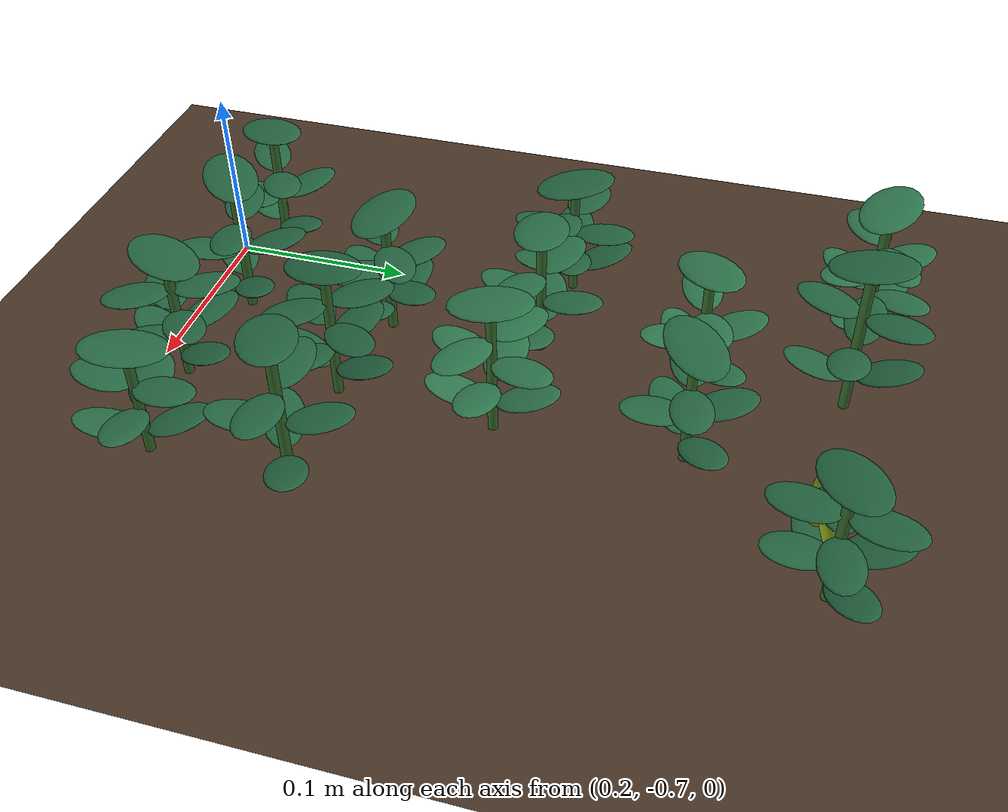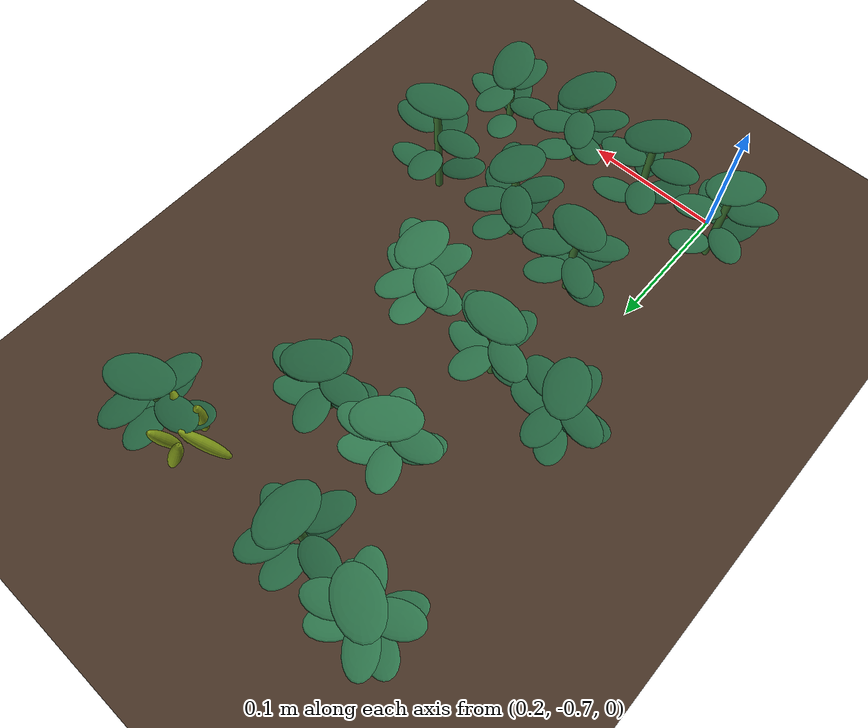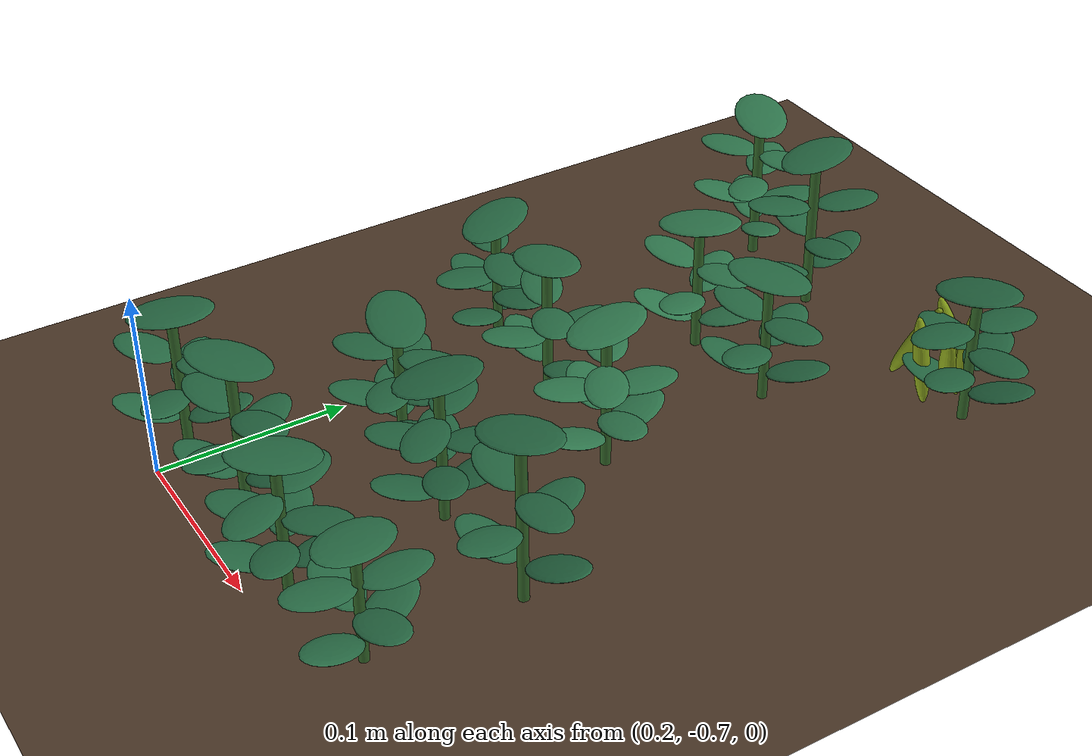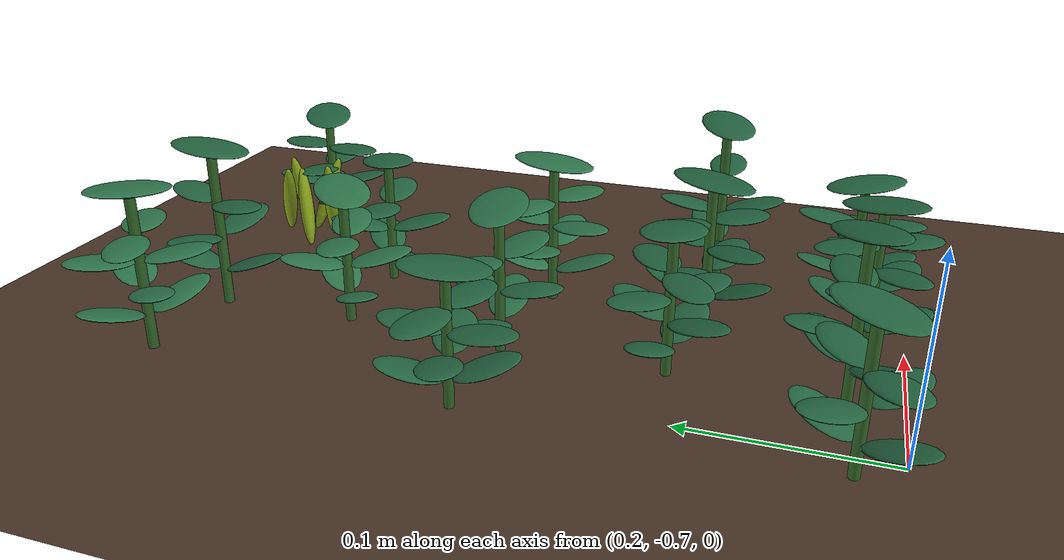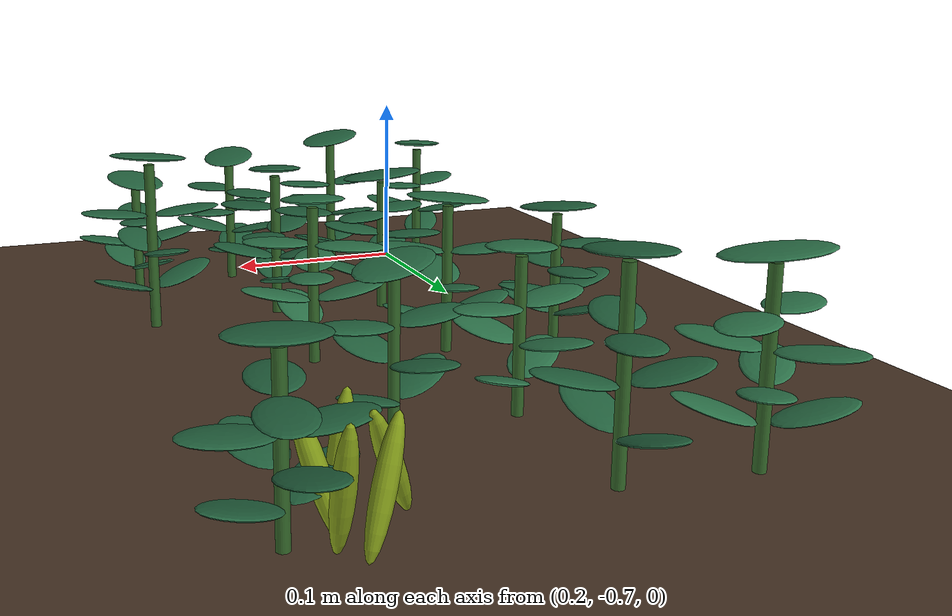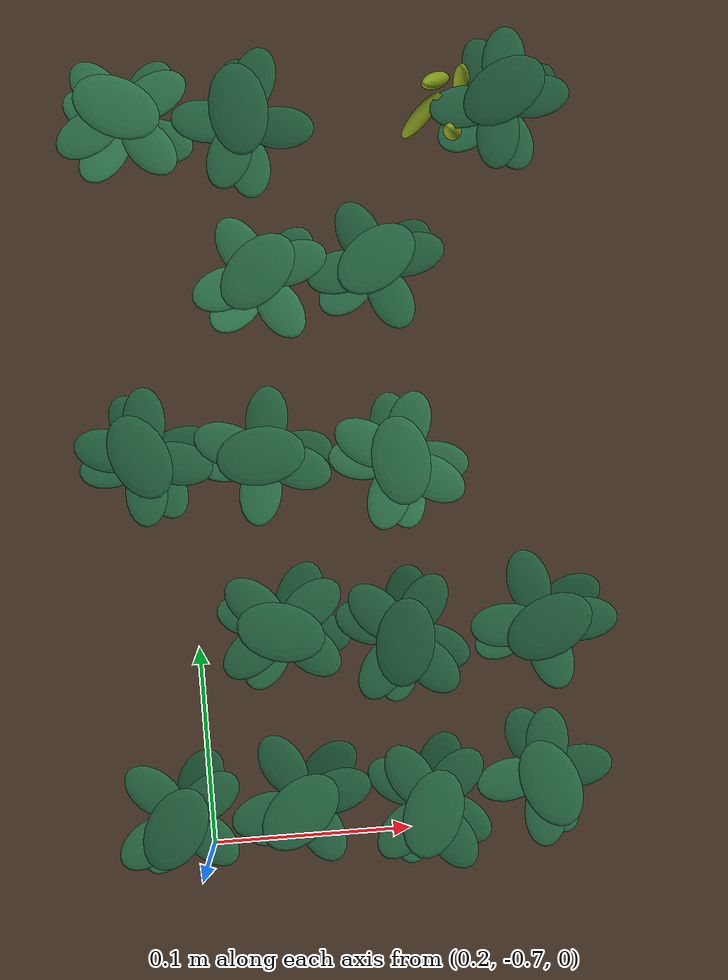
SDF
<sdf version="1.9">
 <world name="jim_field">
  <model name="ground_plane">
   <static>true</static>
   <link name="link">
    <collision name="collision">
     <geometry><plane><normal>0 0 1</normal><size>40 40</size></plane></geometry>
    </collision>
    <visual name="visual">
     <geometry><plane><normal>0 0 1</normal><size>40 40</size></plane></geometry>
     <material>
      <ambient>0.20 0.15 0.11 1</ambient>
      <diffuse>0.30 0.22 0.16 1</diffuse>
      <specular>0.01 0.01 0.01 1</specular>
     </material>
    </visual>
   </link>
  </model>
  <model name="field">
   <static>true</static>
   <pose>0.1837 -0.2516 0 0 0 0</pose>
   <model name="crop_8">
    <static>true</static>
    <pose>0.0037 -0.4267 0 0 0 0</pose>
    <link name="link">
     <visual name="stem">
      <pose>0 0 0.0368 0 0 0</pose>
      <geometry><cylinder><radius>0.0026</radius><length>0.0736</length></cylinder></geometry>
      <material>
       <ambient>0.10 0.22 0.09 1</ambient>
       <diffuse>0.20 0.40 0.16 1</diffuse>
       <specular>0.05 0.06 0.05 1</specular>
      </material>
     </visual>
     <visual name="leaflet_0_0">
      <pose>0.0094 0.0153 0.0221 0 -0.300 1.0215</pose>
      <geometry><ellipsoid><radii>0.0170 0.0105 0.0016</radii></ellipsoid></geometry>
      <material>
       <ambient>0.081 0.218 0.124 1</ambient>
       <diffuse>0.151 0.416 0.265 1</diffuse>
       <specular>0.05 0.06 0.05 1</specular>
      </material>
     </visual>
     <visual name="leaflet_0_1">
      <pose>-0.0094 -0.0153 0.0221 0 -0.300 4.1631</pose>
      <geometry><ellipsoid><radii>0.0170 0.0105 0.0016</radii></ellipsoid></geometry>
      <material>
       <ambient>0.081 0.218 0.124 1</ambient>
       <diffuse>0.151 0.416 0.265 1</diffuse>
       <specular>0.05 0.06 0.05 1</specular>
      </material>
     </visual>
     <visual name="leaflet_1_0">
      <pose>-0.0129 0.0125 0.0373 0 -0.200 2.3715</pose>
      <geometry><ellipsoid><radii>0.0170 0.0105 0.0016</radii></ellipsoid></geometry>
      <material>
       <ambient>0.081 0.218 0.124 1</ambient>
       <diffuse>0.151 0.416 0.265 1</diffuse>
       <specular>0.05 0.06 0.05 1</specular>
      </material>
     </visual>
     <visual name="leaflet_1_1">
      <pose>0.0129 -0.0125 0.0373 0 -0.200 5.5131</pose>
      <geometry><ellipsoid><radii>0.0170 0.0105 0.0016</radii></ellipsoid></geometry>
      <material>
       <ambient>0.081 0.218 0.124 1</ambient>
       <diffuse>0.151 0.416 0.265 1</diffuse>
       <specular>0.05 0.06 0.05 1</specular>
      </material>
     </visual>
     <visual name="leaflet_2_0">
      <pose>-0.0150 -0.0098 0.0525 0 -0.100 3.7215</pose>
      <geometry><ellipsoid><radii>0.0170 0.0105 0.0016</radii></ellipsoid></geometry>
      <material>
       <ambient>0.081 0.218 0.124 1</ambient>
       <diffuse>0.151 0.416 0.265 1</diffuse>
       <specular>0.05 0.06 0.05 1</specular>
      </material>
     </visual>
     <visual name="leaflet_2_1">
      <pose>0.0150 0.0098 0.0525 0 -0.100 6.8631</pose>
      <geometry><ellipsoid><radii>0.0170 0.0105 0.0016</radii></ellipsoid></geometry>
      <material>
       <ambient>0.081 0.218 0.124 1</ambient>
       <diffuse>0.151 0.416 0.265 1</diffuse>
       <specular>0.05 0.06 0.05 1</specular>
      </material>
     </visual>
     <visual name="leaflet_terminal">
      <pose>0 0 0.0776 0 -0.12 1.0215</pose>
      <geometry><ellipsoid><radii>0.0215 0.0140 0.0018</radii></ellipsoid></geometry>
      <material>
       <ambient>0.081 0.218 0.124 1</ambient>
       <diffuse>0.151 0.416 0.265 1</diffuse>
       <specular>0.05 0.06 0.05 1</specular>
      </material>
     </visual>
    </link>
   </model>
   <model name="crop_9">
    <static>true</static>
    <pose>0.0637 -0.4222 0 0 0 0</pose>
    <link name="link">
     <visual name="stem">
      <pose>0 0 0.0403 0 0 0</pose>
      <geometry><cylinder><radius>0.0026</radius><length>0.0805</length></cylinder></geometry>
      <material>
       <ambient>0.10 0.22 0.09 1</ambient>
       <diffuse>0.20 0.40 0.16 1</diffuse>
       <specular>0.05 0.06 0.05 1</specular>
      </material>
     </visual>
     <visual name="leaflet_0_0">
      <pose>-0.0142 -0.0116 0.0242 0 -0.300 3.8253</pose>
      <geometry><ellipsoid><radii>0.0170 0.0105 0.0016</radii></ellipsoid></geometry>
      <material>
       <ambient>0.075 0.209 0.117 1</ambient>
       <diffuse>0.140 0.397 0.252 1</diffuse>
       <specular>0.05 0.06 0.05 1</specular>
      </material>
     </visual>
     <visual name="leaflet_0_1">
      <pose>0.0142 0.0116 0.0242 0 -0.300 6.9669</pose>
      <geometry><ellipsoid><radii>0.0170 0.0105 0.0016</radii></ellipsoid></geometry>
      <material>
       <ambient>0.075 0.209 0.117 1</ambient>
       <diffuse>0.140 0.397 0.252 1</diffuse>
       <specular>0.05 0.06 0.05 1</specular>
      </material>
     </visual>
     <visual name="leaflet_1_0">
      <pose>0.0082 -0.0164 0.0408 0 -0.200 5.1753</pose>
      <geometry><ellipsoid><radii>0.0170 0.0105 0.0016</radii></ellipsoid></geometry>
      <material>
       <ambient>0.075 0.209 0.117 1</ambient>
       <diffuse>0.140 0.397 0.252 1</diffuse>
       <specular>0.05 0.06 0.05 1</specular>
      </material>
     </visual>
     <visual name="leaflet_1_1">
      <pose>-0.0082 0.0164 0.0408 0 -0.200 8.3169</pose>
      <geometry><ellipsoid><radii>0.0170 0.0105 0.0016</radii></ellipsoid></geometry>
      <material>
       <ambient>0.075 0.209 0.117 1</ambient>
       <diffuse>0.140 0.397 0.252 1</diffuse>
       <specular>0.05 0.06 0.05 1</specular>
      </material>
     </visual>
     <visual name="leaflet_2_0">
      <pose>0.0178 0.0044 0.0574 0 -0.100 6.5253</pose>
      <geometry><ellipsoid><radii>0.0170 0.0105 0.0016</radii></ellipsoid></geometry>
      <material>
       <ambient>0.075 0.209 0.117 1</ambient>
       <diffuse>0.140 0.397 0.252 1</diffuse>
       <specular>0.05 0.06 0.05 1</specular>
      </material>
     </visual>
     <visual name="leaflet_2_1">
      <pose>-0.0178 -0.0044 0.0574 0 -0.100 9.6669</pose>
      <geometry><ellipsoid><radii>0.0170 0.0105 0.0016</radii></ellipsoid></geometry>
      <material>
       <ambient>0.075 0.209 0.117 1</ambient>
       <diffuse>0.140 0.397 0.252 1</diffuse>
       <specular>0.05 0.06 0.05 1</specular>
      </material>
     </visual>
     <visual name="leaflet_terminal">
      <pose>0 0 0.0845 0 -0.12 3.8253</pose>
      <geometry><ellipsoid><radii>0.0215 0.0140 0.0018</radii></ellipsoid></geometry>
      <material>
       <ambient>0.075 0.209 0.117 1</ambient>
       <diffuse>0.140 0.397 0.252 1</diffuse>
       <specular>0.05 0.06 0.05 1</specular>
      </material>
     </visual>
    </link>
   </model>
   <model name="crop_10">
    <static>true</static>
    <pose>0.1263 -0.4297 0 0 0 0</pose>
    <link name="link">
     <visual name="stem">
      <pose>0 0 0.0357 0 0 0</pose>
      <geometry><cylinder><radius>0.0026</radius><length>0.0714</length></cylinder></geometry>
      <material>
       <ambient>0.10 0.22 0.09 1</ambient>
       <diffuse>0.20 0.40 0.16 1</diffuse>
       <specular>0.05 0.06 0.05 1</specular>
      </material>
     </visual>
     <visual name="leaflet_0_0">
      <pose>-0.0068 -0.0165 0.0214 0 -0.300 4.3217</pose>
      <geometry><ellipsoid><radii>0.0170 0.0105 0.0016</radii></ellipsoid></geometry>
      <material>
       <ambient>0.077 0.211 0.119 1</ambient>
       <diffuse>0.143 0.402 0.255 1</diffuse>
       <specular>0.05 0.06 0.05 1</specular>
      </material>
     </visual>
     <visual name="leaflet_0_1">
      <pose>0.0068 0.0165 0.0214 0 -0.300 7.4632</pose>
      <geometry><ellipsoid><radii>0.0170 0.0105 0.0016</radii></ellipsoid></geometry>
      <material>
       <ambient>0.077 0.211 0.119 1</ambient>
       <diffuse>0.143 0.402 0.255 1</diffuse>
       <specular>0.05 0.06 0.05 1</specular>
      </material>
     </visual>
     <visual name="leaflet_1_0">
      <pose>0.0146 -0.0102 0.0325 0 -0.200 5.6717</pose>
      <geometry><ellipsoid><radii>0.0170 0.0105 0.0016</radii></ellipsoid></geometry>
      <material>
       <ambient>0.077 0.211 0.119 1</ambient>
       <diffuse>0.143 0.402 0.255 1</diffuse>
       <specular>0.05 0.06 0.05 1</specular>
      </material>
     </visual>
     <visual name="leaflet_1_1">
      <pose>-0.0146 0.0102 0.0325 0 -0.200 8.8132</pose>
      <geometry><ellipsoid><radii>0.0170 0.0105 0.0016</radii></ellipsoid></geometry>
      <material>
       <ambient>0.077 0.211 0.119 1</ambient>
       <diffuse>0.143 0.402 0.255 1</diffuse>
       <specular>0.05 0.06 0.05 1</specular>
      </material>
     </visual>
     <visual name="leaflet_2_0">
      <pose>0.0132 0.0120 0.0435 0 -0.100 7.0217</pose>
      <geometry><ellipsoid><radii>0.0170 0.0105 0.0016</radii></ellipsoid></geometry>
      <material>
       <ambient>0.077 0.211 0.119 1</ambient>
       <diffuse>0.143 0.402 0.255 1</diffuse>
       <specular>0.05 0.06 0.05 1</specular>
      </material>
     </visual>
     <visual name="leaflet_2_1">
      <pose>-0.0132 -0.0120 0.0435 0 -0.100 10.1632</pose>
      <geometry><ellipsoid><radii>0.0170 0.0105 0.0016</radii></ellipsoid></geometry>
      <material>
       <ambient>0.077 0.211 0.119 1</ambient>
       <diffuse>0.143 0.402 0.255 1</diffuse>
       <specular>0.05 0.06 0.05 1</specular>
      </material>
     </visual>
     <visual name="leaflet_3_0">
      <pose>-0.0088 0.0155 0.0546 0 0.000 8.3717</pose>
      <geometry><ellipsoid><radii>0.0170 0.0105 0.0016</radii></ellipsoid></geometry>
      <material>
       <ambient>0.077 0.211 0.119 1</ambient>
       <diffuse>0.143 0.402 0.255 1</diffuse>
       <specular>0.05 0.06 0.05 1</specular>
      </material>
     </visual>
     <visual name="leaflet_3_1">
      <pose>0.0088 -0.0155 0.0546 0 0.000 11.5132</pose>
      <geometry><ellipsoid><radii>0.0170 0.0105 0.0016</radii></ellipsoid></geometry>
      <material>
       <ambient>0.077 0.211 0.119 1</ambient>
       <diffuse>0.143 0.402 0.255 1</diffuse>
       <specular>0.05 0.06 0.05 1</specular>
      </material>
     </visual>
     <visual name="leaflet_terminal">
      <pose>0 0 0.0754 0 -0.12 4.3217</pose>
      <geometry><ellipsoid><radii>0.0215 0.0140 0.0018</radii></ellipsoid></geometry>
      <material>
       <ambient>0.077 0.211 0.119 1</ambient>
       <diffuse>0.143 0.402 0.255 1</diffuse>
       <specular>0.05 0.06 0.05 1</specular>
      </material>
     </visual>
    </link>
   </model>
   <model name="crop_11">
    <static>true</static>
    <pose>0.1842 -0.4212 0 0 0 0</pose>
    <link name="link">
     <visual name="stem">
      <pose>0 0 0.0308 0 0 0</pose>
      <geometry><cylinder><radius>0.0025</radius><length>0.0617</length></cylinder></geometry>
      <material>
       <ambient>0.10 0.22 0.09 1</ambient>
       <diffuse>0.20 0.40 0.16 1</diffuse>
       <specular>0.05 0.06 0.05 1</specular>
      </material>
     </visual>
     <visual name="leaflet_0_0">
      <pose>0.0058 -0.0163 0.0185 0 -0.300 5.0557</pose>
      <geometry><ellipsoid><radii>0.0170 0.0105 0.0016</radii></ellipsoid></geometry>
      <material>
       <ambient>0.082 0.220 0.126 1</ambient>
       <diffuse>0.154 0.420 0.268 1</diffuse>
       <specular>0.05 0.06 0.05 1</specular>
      </material>
     </visual>
     <visual name="leaflet_0_1">
      <pose>-0.0058 0.0163 0.0185 0 -0.300 8.1973</pose>
      <geometry><ellipsoid><radii>0.0170 0.0105 0.0016</radii></ellipsoid></geometry>
      <material>
       <ambient>0.082 0.220 0.126 1</ambient>
       <diffuse>0.154 0.420 0.268 1</diffuse>
       <specular>0.05 0.06 0.05 1</specular>
      </material>
     </visual>
     <visual name="leaflet_1_0">
      <pose>0.0172 0.0021 0.0313 0 -0.200 6.4057</pose>
      <geometry><ellipsoid><radii>0.0170 0.0105 0.0016</radii></ellipsoid></geometry>
      <material>
       <ambient>0.082 0.220 0.126 1</ambient>
       <diffuse>0.154 0.420 0.268 1</diffuse>
       <specular>0.05 0.06 0.05 1</specular>
      </material>
     </visual>
     <visual name="leaflet_1_1">
      <pose>-0.0172 -0.0021 0.0313 0 -0.200 9.5473</pose>
      <geometry><ellipsoid><radii>0.0170 0.0105 0.0016</radii></ellipsoid></geometry>
      <material>
       <ambient>0.082 0.220 0.126 1</ambient>
       <diffuse>0.154 0.420 0.268 1</diffuse>
       <specular>0.05 0.06 0.05 1</specular>
      </material>
     </visual>
     <visual name="leaflet_2_0">
      <pose>0.0017 0.0172 0.0440 0 -0.100 7.7557</pose>
      <geometry><ellipsoid><radii>0.0170 0.0105 0.0016</radii></ellipsoid></geometry>
      <material>
       <ambient>0.082 0.220 0.126 1</ambient>
       <diffuse>0.154 0.420 0.268 1</diffuse>
       <specular>0.05 0.06 0.05 1</specular>
      </material>
     </visual>
     <visual name="leaflet_2_1">
      <pose>-0.0017 -0.0172 0.0440 0 -0.100 10.8973</pose>
      <geometry><ellipsoid><radii>0.0170 0.0105 0.0016</radii></ellipsoid></geometry>
      <material>
       <ambient>0.082 0.220 0.126 1</ambient>
       <diffuse>0.154 0.420 0.268 1</diffuse>
       <specular>0.05 0.06 0.05 1</specular>
      </material>
     </visual>
     <visual name="leaflet_terminal">
      <pose>0 0 0.0657 0 -0.12 5.0557</pose>
      <geometry><ellipsoid><radii>0.0215 0.0140 0.0018</radii></ellipsoid></geometry>
      <material>
       <ambient>0.082 0.220 0.126 1</ambient>
       <diffuse>0.154 0.420 0.268 1</diffuse>
       <specular>0.05 0.06 0.05 1</specular>
      </material>
     </visual>
    </link>
   </model>
   <model name="crop_26">
    <static>true</static>
    <pose>0.0610 -0.3376 0 0 0 0</pose>
    <link name="link">
     <visual name="stem">
      <pose>0 0 0.0356 0 0 0</pose>
      <geometry><cylinder><radius>0.0026</radius><length>0.0712</length></cylinder></geometry>
      <material>
       <ambient>0.10 0.22 0.09 1</ambient>
       <diffuse>0.20 0.40 0.16 1</diffuse>
       <specular>0.05 0.06 0.05 1</specular>
      </material>
     </visual>
     <visual name="leaflet_0_0">
      <pose>-0.0170 0.0054 0.0214 0 -0.300 2.8353</pose>
      <geometry><ellipsoid><radii>0.0170 0.0105 0.0016</radii></ellipsoid></geometry>
      <material>
       <ambient>0.077 0.212 0.120 1</ambient>
       <diffuse>0.145 0.405 0.257 1</diffuse>
       <specular>0.05 0.06 0.05 1</specular>
      </material>
     </visual>
     <visual name="leaflet_0_1">
      <pose>0.0170 -0.0054 0.0214 0 -0.300 5.9769</pose>
      <geometry><ellipsoid><radii>0.0170 0.0105 0.0016</radii></ellipsoid></geometry>
      <material>
       <ambient>0.077 0.212 0.120 1</ambient>
       <diffuse>0.145 0.405 0.257 1</diffuse>
       <specular>0.05 0.06 0.05 1</specular>
      </material>
     </visual>
     <visual name="leaflet_1_0">
      <pose>-0.0090 -0.0154 0.0324 0 -0.200 4.1853</pose>
      <geometry><ellipsoid><radii>0.0170 0.0105 0.0016</radii></ellipsoid></geometry>
      <material>
       <ambient>0.077 0.212 0.120 1</ambient>
       <diffuse>0.145 0.405 0.257 1</diffuse>
       <specular>0.05 0.06 0.05 1</specular>
      </material>
     </visual>
     <visual name="leaflet_1_1">
      <pose>0.0090 0.0154 0.0324 0 -0.200 7.3269</pose>
      <geometry><ellipsoid><radii>0.0170 0.0105 0.0016</radii></ellipsoid></geometry>
      <material>
       <ambient>0.077 0.212 0.120 1</ambient>
       <diffuse>0.145 0.405 0.257 1</diffuse>
       <specular>0.05 0.06 0.05 1</specular>
      </material>
     </visual>
     <visual name="leaflet_2_0">
      <pose>0.0130 -0.0121 0.0434 0 -0.100 5.5353</pose>
      <geometry><ellipsoid><radii>0.0170 0.0105 0.0016</radii></ellipsoid></geometry>
      <material>
       <ambient>0.077 0.212 0.120 1</ambient>
       <diffuse>0.145 0.405 0.257 1</diffuse>
       <specular>0.05 0.06 0.05 1</specular>
      </material>
     </visual>
     <visual name="leaflet_2_1">
      <pose>-0.0130 0.0121 0.0434 0 -0.100 8.6769</pose>
      <geometry><ellipsoid><radii>0.0170 0.0105 0.0016</radii></ellipsoid></geometry>
      <material>
       <ambient>0.077 0.212 0.120 1</ambient>
       <diffuse>0.145 0.405 0.257 1</diffuse>
       <specular>0.05 0.06 0.05 1</specular>
      </material>
     </visual>
     <visual name="leaflet_3_0">
      <pose>0.0147 0.0101 0.0545 0 0.000 6.8853</pose>
      <geometry><ellipsoid><radii>0.0170 0.0105 0.0016</radii></ellipsoid></geometry>
      <material>
       <ambient>0.077 0.212 0.120 1</ambient>
       <diffuse>0.145 0.405 0.257 1</diffuse>
       <specular>0.05 0.06 0.05 1</specular>
      </material>
     </visual>
     <visual name="leaflet_3_1">
      <pose>-0.0147 -0.0101 0.0545 0 0.000 10.0269</pose>
      <geometry><ellipsoid><radii>0.0170 0.0105 0.0016</radii></ellipsoid></geometry>
      <material>
       <ambient>0.077 0.212 0.120 1</ambient>
       <diffuse>0.145 0.405 0.257 1</diffuse>
       <specular>0.05 0.06 0.05 1</specular>
      </material>
     </visual>
     <visual name="leaflet_terminal">
      <pose>0 0 0.0752 0 -0.12 2.8353</pose>
      <geometry><ellipsoid><radii>0.0215 0.0140 0.0018</radii></ellipsoid></geometry>
      <material>
       <ambient>0.077 0.212 0.120 1</ambient>
       <diffuse>0.145 0.405 0.257 1</diffuse>
       <specular>0.05 0.06 0.05 1</specular>
      </material>
     </visual>
    </link>
   </model>
   <model name="crop_27">
    <static>true</static>
    <pose>0.1196 -0.3467 0 0 0 0</pose>
    <link name="link">
     <visual name="stem">
      <pose>0 0 0.0383 0 0 0</pose>
      <geometry><cylinder><radius>0.0026</radius><length>0.0766</length></cylinder></geometry>
      <material>
       <ambient>0.10 0.22 0.09 1</ambient>
       <diffuse>0.20 0.40 0.16 1</diffuse>
       <specular>0.05 0.06 0.05 1</specular>
      </material>
     </visual>
     <visual name="leaflet_0_0">
      <pose>0.0034 0.0178 0.0230 0 -0.300 1.3830</pose>
      <geometry><ellipsoid><radii>0.0170 0.0105 0.0016</radii></ellipsoid></geometry>
      <material>
       <ambient>0.072 0.204 0.113 1</ambient>
       <diffuse>0.134 0.387 0.245 1</diffuse>
       <specular>0.05 0.06 0.05 1</specular>
      </material>
     </visual>
     <visual name="leaflet_0_1">
      <pose>-0.0034 -0.0178 0.0230 0 -0.300 4.5246</pose>
      <geometry><ellipsoid><radii>0.0170 0.0105 0.0016</radii></ellipsoid></geometry>
      <material>
       <ambient>0.072 0.204 0.113 1</ambient>
       <diffuse>0.134 0.387 0.245 1</diffuse>
       <specular>0.05 0.06 0.05 1</specular>
      </material>
     </visual>
     <visual name="leaflet_1_0">
      <pose>-0.0166 0.0072 0.0349 0 -0.200 2.7330</pose>
      <geometry><ellipsoid><radii>0.0170 0.0105 0.0016</radii></ellipsoid></geometry>
      <material>
       <ambient>0.072 0.204 0.113 1</ambient>
       <diffuse>0.134 0.387 0.245 1</diffuse>
       <specular>0.05 0.06 0.05 1</specular>
      </material>
     </visual>
     <visual name="leaflet_1_1">
      <pose>0.0166 -0.0072 0.0349 0 -0.200 5.8746</pose>
      <geometry><ellipsoid><radii>0.0170 0.0105 0.0016</radii></ellipsoid></geometry>
      <material>
       <ambient>0.072 0.204 0.113 1</ambient>
       <diffuse>0.134 0.387 0.245 1</diffuse>
       <specular>0.05 0.06 0.05 1</specular>
      </material>
     </visual>
     <visual name="leaflet_2_0">
      <pose>-0.0106 -0.0146 0.0467 0 -0.100 4.0830</pose>
      <geometry><ellipsoid><radii>0.0170 0.0105 0.0016</radii></ellipsoid></geometry>
      <material>
       <ambient>0.072 0.204 0.113 1</ambient>
       <diffuse>0.134 0.387 0.245 1</diffuse>
       <specular>0.05 0.06 0.05 1</specular>
      </material>
     </visual>
     <visual name="leaflet_2_1">
      <pose>0.0106 0.0146 0.0467 0 -0.100 7.2246</pose>
      <geometry><ellipsoid><radii>0.0170 0.0105 0.0016</radii></ellipsoid></geometry>
      <material>
       <ambient>0.072 0.204 0.113 1</ambient>
       <diffuse>0.134 0.387 0.245 1</diffuse>
       <specular>0.05 0.06 0.05 1</specular>
      </material>
     </visual>
     <visual name="leaflet_3_0">
      <pose>0.0119 -0.0136 0.0586 0 0.000 5.4330</pose>
      <geometry><ellipsoid><radii>0.0170 0.0105 0.0016</radii></ellipsoid></geometry>
      <material>
       <ambient>0.072 0.204 0.113 1</ambient>
       <diffuse>0.134 0.387 0.245 1</diffuse>
       <specular>0.05 0.06 0.05 1</specular>
      </material>
     </visual>
     <visual name="leaflet_3_1">
      <pose>-0.0119 0.0136 0.0586 0 0.000 8.5746</pose>
      <geometry><ellipsoid><radii>0.0170 0.0105 0.0016</radii></ellipsoid></geometry>
      <material>
       <ambient>0.072 0.204 0.113 1</ambient>
       <diffuse>0.134 0.387 0.245 1</diffuse>
       <specular>0.05 0.06 0.05 1</specular>
      </material>
     </visual>
     <visual name="leaflet_terminal">
      <pose>0 0 0.0806 0 -0.12 1.3830</pose>
      <geometry><ellipsoid><radii>0.0215 0.0140 0.0018</radii></ellipsoid></geometry>
      <material>
       <ambient>0.072 0.204 0.113 1</ambient>
       <diffuse>0.134 0.387 0.245 1</diffuse>
       <specular>0.05 0.06 0.05 1</specular>
      </material>
     </visual>
    </link>
   </model>
   <model name="crop_28">
    <static>true</static>
    <pose>0.1873 -0.3438 0 0 0 0</pose>
    <link name="link">
     <visual name="stem">
      <pose>0 0 0.0436 0 0 0</pose>
      <geometry><cylinder><radius>0.0027</radius><length>0.0872</length></cylinder></geometry>
      <material>
       <ambient>0.10 0.22 0.09 1</ambient>
       <diffuse>0.20 0.40 0.16 1</diffuse>
       <specular>0.05 0.06 0.05 1</specular>
      </material>
     </visual>
     <visual name="leaflet_0_0">
      <pose>0.0168 0.0080 0.0261 0 -0.300 0.4450</pose>
      <geometry><ellipsoid><radii>0.0170 0.0105 0.0016</radii></ellipsoid></geometry>
      <material>
       <ambient>0.077 0.212 0.120 1</ambient>
       <diffuse>0.144 0.404 0.257 1</diffuse>
       <specular>0.05 0.06 0.05 1</specular>
      </material>
     </visual>
     <visual name="leaflet_0_1">
      <pose>-0.0168 -0.0080 0.0261 0 -0.300 3.5866</pose>
      <geometry><ellipsoid><radii>0.0170 0.0105 0.0016</radii></ellipsoid></geometry>
      <material>
       <ambient>0.077 0.212 0.120 1</ambient>
       <diffuse>0.144 0.404 0.257 1</diffuse>
       <specular>0.05 0.06 0.05 1</specular>
      </material>
     </visual>
     <visual name="leaflet_1_0">
      <pose>-0.0041 0.0182 0.0442 0 -0.200 1.7950</pose>
      <geometry><ellipsoid><radii>0.0170 0.0105 0.0016</radii></ellipsoid></geometry>
      <material>
       <ambient>0.077 0.212 0.120 1</ambient>
       <diffuse>0.144 0.404 0.257 1</diffuse>
       <specular>0.05 0.06 0.05 1</specular>
      </material>
     </visual>
     <visual name="leaflet_1_1">
      <pose>0.0041 -0.0182 0.0442 0 -0.200 4.9366</pose>
      <geometry><ellipsoid><radii>0.0170 0.0105 0.0016</radii></ellipsoid></geometry>
      <material>
       <ambient>0.077 0.212 0.120 1</ambient>
       <diffuse>0.144 0.404 0.257 1</diffuse>
       <specular>0.05 0.06 0.05 1</specular>
      </material>
     </visual>
     <visual name="leaflet_2_0">
      <pose>-0.0186 -0.0001 0.0622 0 -0.100 3.1450</pose>
      <geometry><ellipsoid><radii>0.0170 0.0105 0.0016</radii></ellipsoid></geometry>
      <material>
       <ambient>0.077 0.212 0.120 1</ambient>
       <diffuse>0.144 0.404 0.257 1</diffuse>
       <specular>0.05 0.06 0.05 1</specular>
      </material>
     </visual>
     <visual name="leaflet_2_1">
      <pose>0.0186 0.0001 0.0622 0 -0.100 6.2866</pose>
      <geometry><ellipsoid><radii>0.0170 0.0105 0.0016</radii></ellipsoid></geometry>
      <material>
       <ambient>0.077 0.212 0.120 1</ambient>
       <diffuse>0.144 0.404 0.257 1</diffuse>
       <specular>0.05 0.06 0.05 1</specular>
      </material>
     </visual>
     <visual name="leaflet_terminal">
      <pose>0 0 0.0912 0 -0.12 0.4450</pose>
      <geometry><ellipsoid><radii>0.0215 0.0140 0.0018</radii></ellipsoid></geometry>
      <material>
       <ambient>0.077 0.212 0.120 1</ambient>
       <diffuse>0.144 0.404 0.257 1</diffuse>
       <specular>0.05 0.06 0.05 1</specular>
      </material>
     </visual>
    </link>
   </model>
   <model name="crop_42">
    <static>true</static>
    <pose>0.0002 -0.2489 0 0 0 0</pose>
    <link name="link">
     <visual name="stem">
      <pose>0 0 0.0331 0 0 0</pose>
      <geometry><cylinder><radius>0.0025</radius><length>0.0661</length></cylinder></geometry>
      <material>
       <ambient>0.10 0.22 0.09 1</ambient>
       <diffuse>0.20 0.40 0.16 1</diffuse>
       <specular>0.05 0.06 0.05 1</specular>
      </material>
     </visual>
     <visual name="leaflet_0_0">
      <pose>-0.0069 0.0161 0.0198 0 -0.300 1.9731</pose>
      <geometry><ellipsoid><radii>0.0170 0.0105 0.0016</radii></ellipsoid></geometry>
      <material>
       <ambient>0.078 0.213 0.121 1</ambient>
       <diffuse>0.146 0.407 0.259 1</diffuse>
       <specular>0.05 0.06 0.05 1</specular>
      </material>
     </visual>
     <visual name="leaflet_0_1">
      <pose>0.0069 -0.0161 0.0198 0 -0.300 5.1147</pose>
      <geometry><ellipsoid><radii>0.0170 0.0105 0.0016</radii></ellipsoid></geometry>
      <material>
       <ambient>0.078 0.213 0.121 1</ambient>
       <diffuse>0.146 0.407 0.259 1</diffuse>
       <specular>0.05 0.06 0.05 1</specular>
      </material>
     </visual>
     <visual name="leaflet_1_0">
      <pose>-0.0172 -0.0032 0.0301 0 -0.200 3.3231</pose>
      <geometry><ellipsoid><radii>0.0170 0.0105 0.0016</radii></ellipsoid></geometry>
      <material>
       <ambient>0.078 0.213 0.121 1</ambient>
       <diffuse>0.146 0.407 0.259 1</diffuse>
       <specular>0.05 0.06 0.05 1</specular>
      </material>
     </visual>
     <visual name="leaflet_1_1">
      <pose>0.0172 0.0032 0.0301 0 -0.200 6.4647</pose>
      <geometry><ellipsoid><radii>0.0170 0.0105 0.0016</radii></ellipsoid></geometry>
      <material>
       <ambient>0.078 0.213 0.121 1</ambient>
       <diffuse>0.146 0.407 0.259 1</diffuse>
       <specular>0.05 0.06 0.05 1</specular>
      </material>
     </visual>
     <visual name="leaflet_2_0">
      <pose>-0.0007 -0.0175 0.0403 0 -0.100 4.6731</pose>
      <geometry><ellipsoid><radii>0.0170 0.0105 0.0016</radii></ellipsoid></geometry>
      <material>
       <ambient>0.078 0.213 0.121 1</ambient>
       <diffuse>0.146 0.407 0.259 1</diffuse>
       <specular>0.05 0.06 0.05 1</specular>
      </material>
     </visual>
     <visual name="leaflet_2_1">
      <pose>0.0007 0.0175 0.0403 0 -0.100 7.8147</pose>
      <geometry><ellipsoid><radii>0.0170 0.0105 0.0016</radii></ellipsoid></geometry>
      <material>
       <ambient>0.078 0.213 0.121 1</ambient>
       <diffuse>0.146 0.407 0.259 1</diffuse>
       <specular>0.05 0.06 0.05 1</specular>
      </material>
     </visual>
     <visual name="leaflet_3_0">
      <pose>0.0169 -0.0045 0.0506 0 0.000 6.0231</pose>
      <geometry><ellipsoid><radii>0.0170 0.0105 0.0016</radii></ellipsoid></geometry>
      <material>
       <ambient>0.078 0.213 0.121 1</ambient>
       <diffuse>0.146 0.407 0.259 1</diffuse>
       <specular>0.05 0.06 0.05 1</specular>
      </material>
     </visual>
     <visual name="leaflet_3_1">
      <pose>-0.0169 0.0045 0.0506 0 0.000 9.1647</pose>
      <geometry><ellipsoid><radii>0.0170 0.0105 0.0016</radii></ellipsoid></geometry>
      <material>
       <ambient>0.078 0.213 0.121 1</ambient>
       <diffuse>0.146 0.407 0.259 1</diffuse>
       <specular>0.05 0.06 0.05 1</specular>
      </material>
     </visual>
     <visual name="leaflet_terminal">
      <pose>0 0 0.0701 0 -0.12 1.9731</pose>
      <geometry><ellipsoid><radii>0.0215 0.0140 0.0018</radii></ellipsoid></geometry>
      <material>
       <ambient>0.078 0.213 0.121 1</ambient>
       <diffuse>0.146 0.407 0.259 1</diffuse>
       <specular>0.05 0.06 0.05 1</specular>
      </material>
     </visual>
    </link>
   </model>
   <model name="crop_43">
    <static>true</static>
    <pose>0.0583 -0.2530 0 0 0 0</pose>
    <link name="link">
     <visual name="stem">
      <pose>0 0 0.0369 0 0 0</pose>
      <geometry><cylinder><radius>0.0026</radius><length>0.0737</length></cylinder></geometry>
      <material>
       <ambient>0.10 0.22 0.09 1</ambient>
       <diffuse>0.20 0.40 0.16 1</diffuse>
       <specular>0.05 0.06 0.05 1</specular>
      </material>
     </visual>
     <visual name="leaflet_0_0">
      <pose>0.0179 0.0010 0.0221 0 -0.300 0.0585</pose>
      <geometry><ellipsoid><radii>0.0170 0.0105 0.0016</radii></ellipsoid></geometry>
      <material>
       <ambient>0.089 0.231 0.135 1</ambient>
       <diffuse>0.167 0.442 0.283 1</diffuse>
       <specular>0.05 0.06 0.05 1</specular>
      </material>
     </visual>
     <visual name="leaflet_0_1">
      <pose>-0.0179 -0.0010 0.0221 0 -0.300 3.2001</pose>
      <geometry><ellipsoid><radii>0.0170 0.0105 0.0016</radii></ellipsoid></geometry>
      <material>
       <ambient>0.089 0.231 0.135 1</ambient>
       <diffuse>0.167 0.442 0.283 1</diffuse>
       <specular>0.05 0.06 0.05 1</specular>
      </material>
     </visual>
     <visual name="leaflet_1_0">
      <pose>0.0029 0.0177 0.0373 0 -0.200 1.4085</pose>
      <geometry><ellipsoid><radii>0.0170 0.0105 0.0016</radii></ellipsoid></geometry>
      <material>
       <ambient>0.089 0.231 0.135 1</ambient>
       <diffuse>0.167 0.442 0.283 1</diffuse>
       <specular>0.05 0.06 0.05 1</specular>
      </material>
     </visual>
     <visual name="leaflet_1_1">
      <pose>-0.0029 -0.0177 0.0373 0 -0.200 4.5501</pose>
      <geometry><ellipsoid><radii>0.0170 0.0105 0.0016</radii></ellipsoid></geometry>
      <material>
       <ambient>0.089 0.231 0.135 1</ambient>
       <diffuse>0.167 0.442 0.283 1</diffuse>
       <specular>0.05 0.06 0.05 1</specular>
      </material>
     </visual>
     <visual name="leaflet_2_0">
      <pose>-0.0166 0.0067 0.0526 0 -0.100 2.7585</pose>
      <geometry><ellipsoid><radii>0.0170 0.0105 0.0016</radii></ellipsoid></geometry>
      <material>
       <ambient>0.089 0.231 0.135 1</ambient>
       <diffuse>0.167 0.442 0.283 1</diffuse>
       <specular>0.05 0.06 0.05 1</specular>
      </material>
     </visual>
     <visual name="leaflet_2_1">
      <pose>0.0166 -0.0067 0.0526 0 -0.100 5.9001</pose>
      <geometry><ellipsoid><radii>0.0170 0.0105 0.0016</radii></ellipsoid></geometry>
      <material>
       <ambient>0.089 0.231 0.135 1</ambient>
       <diffuse>0.167 0.442 0.283 1</diffuse>
       <specular>0.05 0.06 0.05 1</specular>
      </material>
     </visual>
     <visual name="leaflet_terminal">
      <pose>0 0 0.0777 0 -0.12 0.0585</pose>
      <geometry><ellipsoid><radii>0.0215 0.0140 0.0018</radii></ellipsoid></geometry>
      <material>
       <ambient>0.089 0.231 0.135 1</ambient>
       <diffuse>0.167 0.442 0.283 1</diffuse>
       <specular>0.05 0.06 0.05 1</specular>
      </material>
     </visual>
    </link>
   </model>
   <model name="crop_44">
    <static>true</static>
    <pose>0.1246 -0.2606 0 0 0 0</pose>
    <link name="link">
     <visual name="stem">
      <pose>0 0 0.0381 0 0 0</pose>
      <geometry><cylinder><radius>0.0026</radius><length>0.0761</length></cylinder></geometry>
      <material>
       <ambient>0.10 0.22 0.09 1</ambient>
       <diffuse>0.20 0.40 0.16 1</diffuse>
       <specular>0.05 0.06 0.05 1</specular>
      </material>
     </visual>
     <visual name="leaflet_0_0">
      <pose>-0.0017 0.0180 0.0228 0 -0.300 1.6655</pose>
      <geometry><ellipsoid><radii>0.0170 0.0105 0.0016</radii></ellipsoid></geometry>
      <material>
       <ambient>0.098 0.247 0.147 1</ambient>
       <diffuse>0.186 0.473 0.305 1</diffuse>
       <specular>0.05 0.06 0.05 1</specular>
      </material>
     </visual>
     <visual name="leaflet_0_1">
      <pose>0.0017 -0.0180 0.0228 0 -0.300 4.8071</pose>
      <geometry><ellipsoid><radii>0.0170 0.0105 0.0016</radii></ellipsoid></geometry>
      <material>
       <ambient>0.098 0.247 0.147 1</ambient>
       <diffuse>0.186 0.473 0.305 1</diffuse>
       <specular>0.05 0.06 0.05 1</specular>
      </material>
     </visual>
     <visual name="leaflet_1_0">
      <pose>-0.0179 0.0023 0.0346 0 -0.200 3.0155</pose>
      <geometry><ellipsoid><radii>0.0170 0.0105 0.0016</radii></ellipsoid></geometry>
      <material>
       <ambient>0.098 0.247 0.147 1</ambient>
       <diffuse>0.186 0.473 0.305 1</diffuse>
       <specular>0.05 0.06 0.05 1</specular>
      </material>
     </visual>
     <visual name="leaflet_1_1">
      <pose>0.0179 -0.0023 0.0346 0 -0.200 6.1571</pose>
      <geometry><ellipsoid><radii>0.0170 0.0105 0.0016</radii></ellipsoid></geometry>
      <material>
       <ambient>0.098 0.247 0.147 1</ambient>
       <diffuse>0.186 0.473 0.305 1</diffuse>
       <specular>0.05 0.06 0.05 1</specular>
      </material>
     </visual>
     <visual name="leaflet_2_0">
      <pose>-0.0061 -0.0170 0.0464 0 -0.100 4.3655</pose>
      <geometry><ellipsoid><radii>0.0170 0.0105 0.0016</radii></ellipsoid></geometry>
      <material>
       <ambient>0.098 0.247 0.147 1</ambient>
       <diffuse>0.186 0.473 0.305 1</diffuse>
       <specular>0.05 0.06 0.05 1</specular>
      </material>
     </visual>
     <visual name="leaflet_2_1">
      <pose>0.0061 0.0170 0.0464 0 -0.100 7.5071</pose>
      <geometry><ellipsoid><radii>0.0170 0.0105 0.0016</radii></ellipsoid></geometry>
      <material>
       <ambient>0.098 0.247 0.147 1</ambient>
       <diffuse>0.186 0.473 0.305 1</diffuse>
       <specular>0.05 0.06 0.05 1</specular>
      </material>
     </visual>
     <visual name="leaflet_3_0">
      <pose>0.0152 -0.0097 0.0582 0 0.000 5.7155</pose>
      <geometry><ellipsoid><radii>0.0170 0.0105 0.0016</radii></ellipsoid></geometry>
      <material>
       <ambient>0.098 0.247 0.147 1</ambient>
       <diffuse>0.186 0.473 0.305 1</diffuse>
       <specular>0.05 0.06 0.05 1</specular>
      </material>
     </visual>
     <visual name="leaflet_3_1">
      <pose>-0.0152 0.0097 0.0582 0 0.000 8.8571</pose>
      <geometry><ellipsoid><radii>0.0170 0.0105 0.0016</radii></ellipsoid></geometry>
      <material>
       <ambient>0.098 0.247 0.147 1</ambient>
       <diffuse>0.186 0.473 0.305 1</diffuse>
       <specular>0.05 0.06 0.05 1</specular>
      </material>
     </visual>
     <visual name="leaflet_terminal">
      <pose>0 0 0.0801 0 -0.12 1.6655</pose>
      <geometry><ellipsoid><radii>0.0215 0.0140 0.0018</radii></ellipsoid></geometry>
      <material>
       <ambient>0.098 0.247 0.147 1</ambient>
       <diffuse>0.186 0.473 0.305 1</diffuse>
       <specular>0.05 0.06 0.05 1</specular>
      </material>
     </visual>
    </link>
   </model>
   <model name="crop_60">
    <static>true</static>
    <pose>0.0638 -0.1652 0 0 0 0</pose>
    <link name="link">
     <visual name="stem">
      <pose>0 0 0.0350 0 0 0</pose>
      <geometry><cylinder><radius>0.0026</radius><length>0.0699</length></cylinder></geometry>
      <material>
       <ambient>0.10 0.22 0.09 1</ambient>
       <diffuse>0.20 0.40 0.16 1</diffuse>
       <specular>0.05 0.06 0.05 1</specular>
      </material>
     </visual>
     <visual name="leaflet_0_0">
      <pose>0.0133 0.0117 0.0210 0 -0.300 0.7243</pose>
      <geometry><ellipsoid><radii>0.0170 0.0105 0.0016</radii></ellipsoid></geometry>
      <material>
       <ambient>0.099 0.249 0.149 1</ambient>
       <diffuse>0.188 0.477 0.308 1</diffuse>
       <specular>0.05 0.06 0.05 1</specular>
      </material>
     </visual>
     <visual name="leaflet_0_1">
      <pose>-0.0133 -0.0117 0.0210 0 -0.300 3.8659</pose>
      <geometry><ellipsoid><radii>0.0170 0.0105 0.0016</radii></ellipsoid></geometry>
      <material>
       <ambient>0.099 0.249 0.149 1</ambient>
       <diffuse>0.188 0.477 0.308 1</diffuse>
       <specular>0.05 0.06 0.05 1</specular>
      </material>
     </visual>
     <visual name="leaflet_1_0">
      <pose>-0.0086 0.0155 0.0354 0 -0.200 2.0743</pose>
      <geometry><ellipsoid><radii>0.0170 0.0105 0.0016</radii></ellipsoid></geometry>
      <material>
       <ambient>0.099 0.249 0.149 1</ambient>
       <diffuse>0.188 0.477 0.308 1</diffuse>
       <specular>0.05 0.06 0.05 1</specular>
      </material>
     </visual>
     <visual name="leaflet_1_1">
      <pose>0.0086 -0.0155 0.0354 0 -0.200 5.2159</pose>
      <geometry><ellipsoid><radii>0.0170 0.0105 0.0016</radii></ellipsoid></geometry>
      <material>
       <ambient>0.099 0.249 0.149 1</ambient>
       <diffuse>0.188 0.477 0.308 1</diffuse>
       <specular>0.05 0.06 0.05 1</specular>
      </material>
     </visual>
     <visual name="leaflet_2_0">
      <pose>-0.0170 -0.0049 0.0499 0 -0.100 3.4243</pose>
      <geometry><ellipsoid><radii>0.0170 0.0105 0.0016</radii></ellipsoid></geometry>
      <material>
       <ambient>0.099 0.249 0.149 1</ambient>
       <diffuse>0.188 0.477 0.308 1</diffuse>
       <specular>0.05 0.06 0.05 1</specular>
      </material>
     </visual>
     <visual name="leaflet_2_1">
      <pose>0.0170 0.0049 0.0499 0 -0.100 6.5659</pose>
      <geometry><ellipsoid><radii>0.0170 0.0105 0.0016</radii></ellipsoid></geometry>
      <material>
       <ambient>0.099 0.249 0.149 1</ambient>
       <diffuse>0.188 0.477 0.308 1</diffuse>
       <specular>0.05 0.06 0.05 1</specular>
      </material>
     </visual>
     <visual name="leaflet_terminal">
      <pose>0 0 0.0739 0 -0.12 0.7243</pose>
      <geometry><ellipsoid><radii>0.0215 0.0140 0.0018</radii></ellipsoid></geometry>
      <material>
       <ambient>0.099 0.249 0.149 1</ambient>
       <diffuse>0.188 0.477 0.308 1</diffuse>
       <specular>0.05 0.06 0.05 1</specular>
      </material>
     </visual>
    </link>
   </model>
   <model name="crop_61">
    <static>true</static>
    <pose>0.1208 -0.1635 0 0 0 0</pose>
    <link name="link">
     <visual name="stem">
      <pose>0 0 0.0340 0 0 0</pose>
      <geometry><cylinder><radius>0.0025</radius><length>0.0680</length></cylinder></geometry>
      <material>
       <ambient>0.10 0.22 0.09 1</ambient>
       <diffuse>0.20 0.40 0.16 1</diffuse>
       <specular>0.05 0.06 0.05 1</specular>
      </material>
     </visual>
     <visual name="leaflet_0_0">
      <pose>-0.0145 -0.0100 0.0204 0 -0.300 3.7465</pose>
      <geometry><ellipsoid><radii>0.0170 0.0105 0.0016</radii></ellipsoid></geometry>
      <material>
       <ambient>0.080 0.217 0.124 1</ambient>
       <diffuse>0.151 0.415 0.264 1</diffuse>
       <specular>0.05 0.06 0.05 1</specular>
      </material>
     </visual>
     <visual name="leaflet_0_1">
      <pose>0.0145 0.0100 0.0204 0 -0.300 6.8881</pose>
      <geometry><ellipsoid><radii>0.0170 0.0105 0.0016</radii></ellipsoid></geometry>
      <material>
       <ambient>0.080 0.217 0.124 1</ambient>
       <diffuse>0.151 0.415 0.264 1</diffuse>
       <specular>0.05 0.06 0.05 1</specular>
      </material>
     </visual>
     <visual name="leaflet_1_0">
      <pose>0.0066 -0.0163 0.0344 0 -0.200 5.0965</pose>
      <geometry><ellipsoid><radii>0.0170 0.0105 0.0016</radii></ellipsoid></geometry>
      <material>
       <ambient>0.080 0.217 0.124 1</ambient>
       <diffuse>0.151 0.415 0.264 1</diffuse>
       <specular>0.05 0.06 0.05 1</specular>
      </material>
     </visual>
     <visual name="leaflet_1_1">
      <pose>-0.0066 0.0163 0.0344 0 -0.200 8.2381</pose>
      <geometry><ellipsoid><radii>0.0170 0.0105 0.0016</radii></ellipsoid></geometry>
      <material>
       <ambient>0.080 0.217 0.124 1</ambient>
       <diffuse>0.151 0.415 0.264 1</diffuse>
       <specular>0.05 0.06 0.05 1</specular>
      </material>
     </visual>
     <visual name="leaflet_2_0">
      <pose>0.0174 0.0029 0.0485 0 -0.100 6.4465</pose>
      <geometry><ellipsoid><radii>0.0170 0.0105 0.0016</radii></ellipsoid></geometry>
      <material>
       <ambient>0.080 0.217 0.124 1</ambient>
       <diffuse>0.151 0.415 0.264 1</diffuse>
       <specular>0.05 0.06 0.05 1</specular>
      </material>
     </visual>
     <visual name="leaflet_2_1">
      <pose>-0.0174 -0.0029 0.0485 0 -0.100 9.5881</pose>
      <geometry><ellipsoid><radii>0.0170 0.0105 0.0016</radii></ellipsoid></geometry>
      <material>
       <ambient>0.080 0.217 0.124 1</ambient>
       <diffuse>0.151 0.415 0.264 1</diffuse>
       <specular>0.05 0.06 0.05 1</specular>
      </material>
     </visual>
     <visual name="leaflet_terminal">
      <pose>0 0 0.0720 0 -0.12 3.7465</pose>
      <geometry><ellipsoid><radii>0.0215 0.0140 0.0018</radii></ellipsoid></geometry>
      <material>
       <ambient>0.080 0.217 0.124 1</ambient>
       <diffuse>0.151 0.415 0.264 1</diffuse>
       <specular>0.05 0.06 0.05 1</specular>
      </material>
     </visual>
    </link>
   </model>
   <model name="crop_76">
    <static>true</static>
    <pose>0.0039 -0.0834 0 0 0 0</pose>
    <link name="link">
     <visual name="stem">
      <pose>0 0 0.0408 0 0 0</pose>
      <geometry><cylinder><radius>0.0027</radius><length>0.0816</length></cylinder></geometry>
      <material>
       <ambient>0.10 0.22 0.09 1</ambient>
       <diffuse>0.20 0.40 0.16 1</diffuse>
       <specular>0.05 0.06 0.05 1</specular>
      </material>
     </visual>
     <visual name="leaflet_0_0">
      <pose>-0.0164 0.0082 0.0245 0 -0.300 2.6799</pose>
      <geometry><ellipsoid><radii>0.0170 0.0105 0.0016</radii></ellipsoid></geometry>
      <material>
       <ambient>0.097 0.245 0.146 1</ambient>
       <diffuse>0.184 0.471 0.303 1</diffuse>
       <specular>0.05 0.06 0.05 1</specular>
      </material>
     </visual>
     <visual name="leaflet_0_1">
      <pose>0.0164 -0.0082 0.0245 0 -0.300 5.8215</pose>
      <geometry><ellipsoid><radii>0.0170 0.0105 0.0016</radii></ellipsoid></geometry>
      <material>
       <ambient>0.097 0.245 0.146 1</ambient>
       <diffuse>0.184 0.471 0.303 1</diffuse>
       <specular>0.05 0.06 0.05 1</specular>
      </material>
     </visual>
     <visual name="leaflet_1_0">
      <pose>-0.0116 -0.0142 0.0371 0 -0.200 4.0299</pose>
      <geometry><ellipsoid><radii>0.0170 0.0105 0.0016</radii></ellipsoid></geometry>
      <material>
       <ambient>0.097 0.245 0.146 1</ambient>
       <diffuse>0.184 0.471 0.303 1</diffuse>
       <specular>0.05 0.06 0.05 1</specular>
      </material>
     </visual>
     <visual name="leaflet_1_1">
      <pose>0.0116 0.0142 0.0371 0 -0.200 7.1715</pose>
      <geometry><ellipsoid><radii>0.0170 0.0105 0.0016</radii></ellipsoid></geometry>
      <material>
       <ambient>0.097 0.245 0.146 1</ambient>
       <diffuse>0.184 0.471 0.303 1</diffuse>
       <specular>0.05 0.06 0.05 1</specular>
      </material>
     </visual>
     <visual name="leaflet_2_0">
      <pose>0.0114 -0.0144 0.0498 0 -0.100 5.3799</pose>
      <geometry><ellipsoid><radii>0.0170 0.0105 0.0016</radii></ellipsoid></geometry>
      <material>
       <ambient>0.097 0.245 0.146 1</ambient>
       <diffuse>0.184 0.471 0.303 1</diffuse>
       <specular>0.05 0.06 0.05 1</specular>
      </material>
     </visual>
     <visual name="leaflet_2_1">
      <pose>-0.0114 0.0144 0.0498 0 -0.100 8.5215</pose>
      <geometry><ellipsoid><radii>0.0170 0.0105 0.0016</radii></ellipsoid></geometry>
      <material>
       <ambient>0.097 0.245 0.146 1</ambient>
       <diffuse>0.184 0.471 0.303 1</diffuse>
       <specular>0.05 0.06 0.05 1</specular>
      </material>
     </visual>
     <visual name="leaflet_3_0">
      <pose>0.0165 0.0079 0.0624 0 0.000 6.7299</pose>
      <geometry><ellipsoid><radii>0.0170 0.0105 0.0016</radii></ellipsoid></geometry>
      <material>
       <ambient>0.097 0.245 0.146 1</ambient>
       <diffuse>0.184 0.471 0.303 1</diffuse>
       <specular>0.05 0.06 0.05 1</specular>
      </material>
     </visual>
     <visual name="leaflet_3_1">
      <pose>-0.0165 -0.0079 0.0624 0 0.000 9.8715</pose>
      <geometry><ellipsoid><radii>0.0170 0.0105 0.0016</radii></ellipsoid></geometry>
      <material>
       <ambient>0.097 0.245 0.146 1</ambient>
       <diffuse>0.184 0.471 0.303 1</diffuse>
       <specular>0.05 0.06 0.05 1</specular>
      </material>
     </visual>
     <visual name="leaflet_terminal">
      <pose>0 0 0.0856 0 -0.12 2.6799</pose>
      <geometry><ellipsoid><radii>0.0215 0.0140 0.0018</radii></ellipsoid></geometry>
      <material>
       <ambient>0.097 0.245 0.146 1</ambient>
       <diffuse>0.184 0.471 0.303 1</diffuse>
       <specular>0.05 0.06 0.05 1</specular>
      </material>
     </visual>
    </link>
   </model>
   <model name="crop_77">
    <static>true</static>
    <pose>0.0615 -0.0898 0 0 0 0</pose>
    <link name="link">
     <visual name="stem">
      <pose>0 0 0.0429 0 0 0</pose>
      <geometry><cylinder><radius>0.0027</radius><length>0.0858</length></cylinder></geometry>
      <material>
       <ambient>0.10 0.22 0.09 1</ambient>
       <diffuse>0.20 0.40 0.16 1</diffuse>
       <specular>0.05 0.06 0.05 1</specular>
      </material>
     </visual>
     <visual name="leaflet_0_0">
      <pose>-0.0011 0.0185 0.0258 0 -0.300 1.6277</pose>
      <geometry><ellipsoid><radii>0.0170 0.0105 0.0016</radii></ellipsoid></geometry>
      <material>
       <ambient>0.077 0.212 0.120 1</ambient>
       <diffuse>0.145 0.405 0.257 1</diffuse>
       <specular>0.05 0.06 0.05 1</specular>
      </material>
     </visual>
     <visual name="leaflet_0_1">
      <pose>0.0011 -0.0185 0.0258 0 -0.300 4.7693</pose>
      <geometry><ellipsoid><radii>0.0170 0.0105 0.0016</radii></ellipsoid></geometry>
      <material>
       <ambient>0.077 0.212 0.120 1</ambient>
       <diffuse>0.145 0.405 0.257 1</diffuse>
       <specular>0.05 0.06 0.05 1</specular>
      </material>
     </visual>
     <visual name="leaflet_1_0">
      <pose>-0.0183 0.0030 0.0435 0 -0.200 2.9777</pose>
      <geometry><ellipsoid><radii>0.0170 0.0105 0.0016</radii></ellipsoid></geometry>
      <material>
       <ambient>0.077 0.212 0.120 1</ambient>
       <diffuse>0.145 0.405 0.257 1</diffuse>
       <specular>0.05 0.06 0.05 1</specular>
      </material>
     </visual>
     <visual name="leaflet_1_1">
      <pose>0.0183 -0.0030 0.0435 0 -0.200 6.1193</pose>
      <geometry><ellipsoid><radii>0.0170 0.0105 0.0016</radii></ellipsoid></geometry>
      <material>
       <ambient>0.077 0.212 0.120 1</ambient>
       <diffuse>0.145 0.405 0.257 1</diffuse>
       <specular>0.05 0.06 0.05 1</specular>
      </material>
     </visual>
     <visual name="leaflet_2_0">
      <pose>-0.0070 -0.0172 0.0612 0 -0.100 4.3277</pose>
      <geometry><ellipsoid><radii>0.0170 0.0105 0.0016</radii></ellipsoid></geometry>
      <material>
       <ambient>0.077 0.212 0.120 1</ambient>
       <diffuse>0.145 0.405 0.257 1</diffuse>
       <specular>0.05 0.06 0.05 1</specular>
      </material>
     </visual>
     <visual name="leaflet_2_1">
      <pose>0.0070 0.0172 0.0612 0 -0.100 7.4693</pose>
      <geometry><ellipsoid><radii>0.0170 0.0105 0.0016</radii></ellipsoid></geometry>
      <material>
       <ambient>0.077 0.212 0.120 1</ambient>
       <diffuse>0.145 0.405 0.257 1</diffuse>
       <specular>0.05 0.06 0.05 1</specular>
      </material>
     </visual>
     <visual name="leaflet_terminal">
      <pose>0 0 0.0898 0 -0.12 1.6277</pose>
      <geometry><ellipsoid><radii>0.0215 0.0140 0.0018</radii></ellipsoid></geometry>
      <material>
       <ambient>0.077 0.212 0.120 1</ambient>
       <diffuse>0.145 0.405 0.257 1</diffuse>
       <specular>0.05 0.06 0.05 1</specular>
      </material>
     </visual>
    </link>
   </model>
   <model name="crop_79">
    <static>true</static>
    <pose>0.1881 -0.0887 0 0 0 0</pose>
    <link name="link">
     <visual name="stem">
      <pose>0 0 0.0350 0 0 0</pose>
      <geometry><cylinder><radius>0.0026</radius><length>0.0701</length></cylinder></geometry>
      <material>
       <ambient>0.10 0.22 0.09 1</ambient>
       <diffuse>0.20 0.40 0.16 1</diffuse>
       <specular>0.05 0.06 0.05 1</specular>
      </material>
     </visual>
     <visual name="leaflet_0_0">
      <pose>0.0155 0.0086 0.0210 0 -0.300 0.5060</pose>
      <geometry><ellipsoid><radii>0.0170 0.0105 0.0016</radii></ellipsoid></geometry>
      <material>
       <ambient>0.075 0.208 0.116 1</ambient>
       <diffuse>0.139 0.395 0.251 1</diffuse>
       <specular>0.05 0.06 0.05 1</specular>
      </material>
     </visual>
     <visual name="leaflet_0_1">
      <pose>-0.0155 -0.0086 0.0210 0 -0.300 3.6476</pose>
      <geometry><ellipsoid><radii>0.0170 0.0105 0.0016</radii></ellipsoid></geometry>
      <material>
       <ambient>0.075 0.208 0.116 1</ambient>
       <diffuse>0.139 0.395 0.251 1</diffuse>
       <specular>0.05 0.06 0.05 1</specular>
      </material>
     </visual>
     <visual name="leaflet_1_0">
      <pose>-0.0050 0.0170 0.0319 0 -0.200 1.8560</pose>
      <geometry><ellipsoid><radii>0.0170 0.0105 0.0016</radii></ellipsoid></geometry>
      <material>
       <ambient>0.075 0.208 0.116 1</ambient>
       <diffuse>0.139 0.395 0.251 1</diffuse>
       <specular>0.05 0.06 0.05 1</specular>
      </material>
     </visual>
     <visual name="leaflet_1_1">
      <pose>0.0050 -0.0170 0.0319 0 -0.200 4.9976</pose>
      <geometry><ellipsoid><radii>0.0170 0.0105 0.0016</radii></ellipsoid></geometry>
      <material>
       <ambient>0.075 0.208 0.116 1</ambient>
       <diffuse>0.139 0.395 0.251 1</diffuse>
       <specular>0.05 0.06 0.05 1</specular>
      </material>
     </visual>
     <visual name="leaflet_2_0">
      <pose>-0.0177 -0.0011 0.0427 0 -0.100 3.2060</pose>
      <geometry><ellipsoid><radii>0.0170 0.0105 0.0016</radii></ellipsoid></geometry>
      <material>
       <ambient>0.075 0.208 0.116 1</ambient>
       <diffuse>0.139 0.395 0.251 1</diffuse>
       <specular>0.05 0.06 0.05 1</specular>
      </material>
     </visual>
     <visual name="leaflet_2_1">
      <pose>0.0177 0.0011 0.0427 0 -0.100 6.3476</pose>
      <geometry><ellipsoid><radii>0.0170 0.0105 0.0016</radii></ellipsoid></geometry>
      <material>
       <ambient>0.075 0.208 0.116 1</ambient>
       <diffuse>0.139 0.395 0.251 1</diffuse>
       <specular>0.05 0.06 0.05 1</specular>
      </material>
     </visual>
     <visual name="leaflet_3_0">
      <pose>-0.0028 -0.0175 0.0536 0 0.000 4.5560</pose>
      <geometry><ellipsoid><radii>0.0170 0.0105 0.0016</radii></ellipsoid></geometry>
      <material>
       <ambient>0.075 0.208 0.116 1</ambient>
       <diffuse>0.139 0.395 0.251 1</diffuse>
       <specular>0.05 0.06 0.05 1</specular>
      </material>
     </visual>
     <visual name="leaflet_3_1">
      <pose>0.0028 0.0175 0.0536 0 0.000 7.6976</pose>
      <geometry><ellipsoid><radii>0.0170 0.0105 0.0016</radii></ellipsoid></geometry>
      <material>
       <ambient>0.075 0.208 0.116 1</ambient>
       <diffuse>0.139 0.395 0.251 1</diffuse>
       <specular>0.05 0.06 0.05 1</specular>
      </material>
     </visual>
     <visual name="leaflet_terminal">
      <pose>0 0 0.0741 0 -0.12 0.5060</pose>
      <geometry><ellipsoid><radii>0.0215 0.0140 0.0018</radii></ellipsoid></geometry>
      <material>
       <ambient>0.075 0.208 0.116 1</ambient>
       <diffuse>0.139 0.395 0.251 1</diffuse>
       <specular>0.05 0.06 0.05 1</specular>
      </material>
     </visual>
    </link>
   </model>
   <model name="weed_far_0">
    <static>true</static>
    <pose>0.1632 -0.0856 0 0 0 0</pose>
    <link name="link">
     <visual name="blade_0">
      <pose>0.0125 -0.0055 0.0247 0.1501 0.3413 5.8689</pose>
      <geometry><ellipsoid><radii>0.0043 0.0043 0.0247</radii></ellipsoid></geometry>
      <material>
       <ambient>0.24 0.30 0.04 1</ambient>
       <diffuse>0.52 0.62 0.10 1</diffuse>
       <specular>0.05 0.06 0.05 1</specular>
      </material>
     </visual>
     <visual name="blade_1">
      <pose>0.0086 0.0106 0.0247 -0.1488 0.1202 7.1744</pose>
      <geometry><ellipsoid><radii>0.0043 0.0043 0.0247</radii></ellipsoid></geometry>
      <material>
       <ambient>0.24 0.30 0.04 1</ambient>
       <diffuse>0.52 0.62 0.10 1</diffuse>
       <specular>0.05 0.06 0.05 1</specular>
      </material>
     </visual>
     <visual name="blade_2">
      <pose>-0.0043 0.0129 0.0247 -0.3524 -0.1181 8.1773</pose>
      <geometry><ellipsoid><radii>0.0043 0.0043 0.0247</radii></ellipsoid></geometry>
      <material>
       <ambient>0.24 0.30 0.04 1</ambient>
       <diffuse>0.52 0.62 0.10 1</diffuse>
       <specular>0.05 0.06 0.05 1</specular>
      </material>
     </visual>
     <visual name="blade_3">
      <pose>-0.0129 -0.0042 0.0247 0.1431 -0.4412 9.7384</pose>
      <geometry><ellipsoid><radii>0.0043 0.0043 0.0247</radii></ellipsoid></geometry>
      <material>
       <ambient>0.24 0.30 0.04 1</ambient>
       <diffuse>0.52 0.62 0.10 1</diffuse>
       <specular>0.05 0.06 0.05 1</specular>
      </material>
     </visual>
     <visual name="blade_4">
      <pose>0.0022 -0.0134 0.0247 0.1530 0.0246 11.1551</pose>
      <geometry><ellipsoid><radii>0.0043 0.0043 0.0247</radii></ellipsoid></geometry>
      <material>
       <ambient>0.24 0.30 0.04 1</ambient>
       <diffuse>0.52 0.62 0.10 1</diffuse>
       <specular>0.05 0.06 0.05 1</specular>
      </material>
     </visual>
    </link>
   </model>
  </model>
 </world>
</sdf>
